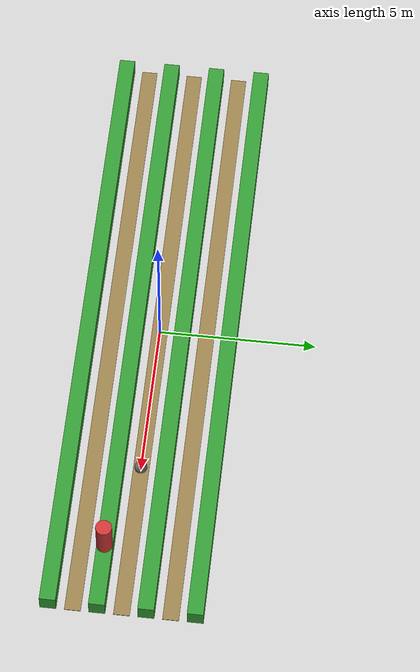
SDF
<?xml version="1.0"?>
<sdf version="1.9">
  <world name="crop_field">

    <!-- Physics -->
    <physics type="ode">
      <max_step_size>0.001</max_step_size>
      <real_time_factor>1</real_time_factor>
      <real_time_update_rate>1000</real_time_update_rate>
    </physics>

    <!-- Scene -->
    <scene>
      <ambient>0.5 0.5 0.5 1</ambient>
      <background>0.5 0.7 0.9 1</background>
      <shadows>true</shadows>
    </scene>

    <!-- Ground Plane -->
    <include>
      <uri>https://fuel.gazebosim.org/1.0/OpenRobotics/models/Ground Plane</uri>
    </include>

    <!-- Sun -->
    <include>
      <uri>https://fuel.gazebosim.org/1.0/OpenRobotics/models/Sun</uri>
    </include>

    <!-- Crop Rows - Row 1 -->
    <model name="crop_row_1">
      <pose>0 -2.25 0.3 0 0 0</pose>
      <static>true</static>
      <link name="link">
        <collision name="collision">
          <geometry>
            <box>
              <size>20 0.5 0.6</size>
            </box>
          </geometry>
        </collision>
        <visual name="visual">
          <geometry>
            <box>
              <size>20 0.5 0.6</size>
            </box>
          </geometry>
          <material>
            <ambient>0.2 0.6 0.2 1</ambient>
            <diffuse>0.2 0.6 0.2 1</diffuse>
            <specular>0.1 0.1 0.1 1</specular>
          </material>
        </visual>
      </link>
    </model>

    <!-- Crop Rows - Row 2 -->
    <model name="crop_row_2">
      <pose>0 -0.75 0.3 0 0 0</pose>
      <static>true</static>
      <link name="link">
        <collision name="collision">
          <geometry>
            <box>
              <size>20 0.5 0.6</size>
            </box>
          </geometry>
        </collision>
        <visual name="visual">
          <geometry>
            <box>
              <size>20 0.5 0.6</size>
            </box>
          </geometry>
          <material>
            <ambient>0.2 0.6 0.2 1</ambient>
            <diffuse>0.2 0.6 0.2 1</diffuse>
            <specular>0.1 0.1 0.1 1</specular>
          </material>
        </visual>
      </link>
    </model>

    <!-- Crop Rows - Row 3 -->
    <model name="crop_row_3">
      <pose>0 0.75 0.3 0 0 0</pose>
      <static>true</static>
      <link name="link">
        <collision name="collision">
          <geometry>
            <box>
              <size>20 0.5 0.6</size>
            </box>
          </geometry>
        </collision>
        <visual name="visual">
          <geometry>
            <box>
              <size>20 0.5 0.6</size>
            </box>
          </geometry>
          <material>
            <ambient>0.2 0.6 0.2 1</ambient>
            <diffuse>0.2 0.6 0.2 1</diffuse>
            <specular>0.1 0.1 0.1 1</specular>
          </material>
        </visual>
      </link>
    </model>

    <!-- Crop Rows - Row 4 -->
    <model name="crop_row_4">
      <pose>0 2.25 0.3 0 0 0</pose>
      <static>true</static>
      <link name="link">
        <collision name="collision">
          <geometry>
            <box>
              <size>20 0.5 0.6</size>
            </box>
          </geometry>
        </collision>
        <visual name="visual">
          <geometry>
            <box>
              <size>20 0.5 0.6</size>
            </box>
          </geometry>
          <material>
            <ambient>0.2 0.6 0.2 1</ambient>
            <diffuse>0.2 0.6 0.2 1</diffuse>
            <specular>0.1 0.1 0.1 1</specular>
          </material>
        </visual>
      </link>
    </model>

    <!-- Path between rows -->
    <model name="dirt_path_1">
      <pose>0 -1.5 0.01 0 0 0</pose>
      <static>true</static>
      <link name="link">
        <visual name="visual">
          <geometry>
            <box>
              <size>20 0.5 0.02</size>
            </box>
          </geometry>
          <material>
            <ambient>0.6 0.5 0.3 1</ambient>
            <diffuse>0.6 0.5 0.3 1</diffuse>
            <specular>0.1 0.1 0.1 1</specular>
          </material>
        </visual>
      </link>
    </model>

    <model name="dirt_path_2">
      <pose>0 0 0.01 0 0 0</pose>
      <static>true</static>
      <link name="link">
        <visual name="visual">
          <geometry>
            <box>
              <size>20 0.5 0.02</size>
            </box>
          </geometry>
          <material>
            <ambient>0.6 0.5 0.3 1</ambient>
            <diffuse>0.6 0.5 0.3 1</diffuse>
            <specular>0.1 0.1 0.1 1</specular>
          </material>
        </visual>
      </link>
    </model>

    <model name="dirt_path_3">
      <pose>0 1.5 0.01 0 0 0</pose>
      <static>true</static>
      <link name="link">
        <visual name="visual">
          <geometry>
            <box>
              <size>20 0.5 0.02</size>
            </box>
          </geometry>
          <material>
            <ambient>0.6 0.5 0.3 1</ambient>
            <diffuse>0.6 0.5 0.3 1</diffuse>
            <specular>0.1 0.1 0.1 1</specular>
          </material>
        </visual>
      </link>
    </model>

    <!-- Obstacle - Rock -->
    <model name="obstacle_rock">
      <pose>5 0 0.2 0 0 0</pose>
      <static>true</static>
      <link name="link">
        <collision name="collision">
          <geometry>
            <sphere>
              <radius>0.2</radius>
            </sphere>
          </geometry>
        </collision>
        <visual name="visual">
          <geometry>
            <sphere>
              <radius>0.2</radius>
            </sphere>
          </geometry>
          <material>
            <ambient>0.4 0.4 0.4 1</ambient>
            <diffuse>0.4 0.4 0.4 1</diffuse>
          </material>
        </visual>
      </link>
    </model>

    <!-- Obstacle - Person (simplified) -->
    <model name="obstacle_person">
      <pose>8 -0.75 0.9 0 0 0</pose>
      <static>true</static>
      <link name="link">
        <collision name="collision">
          <geometry>
            <cylinder>
              <radius>0.25</radius>
              <length>1.8</length>
            </cylinder>
          </geometry>
        </collision>
        <visual name="visual">
          <geometry>
            <cylinder>
              <radius>0.25</radius>
              <length>1.8</length>
            </cylinder>
          </geometry>
          <material>
            <ambient>0.8 0.2 0.2 1</ambient>
            <diffuse>0.8 0.2 0.2 1</diffuse>
          </material>
        </visual>
      </link>
    </model>

    <!-- Spherical coordinates for camera -->
    <spherical_coordinates>
      <surface_model>EARTH_WGS84</surface_model>
      <latitude_deg>37.0</latitude_deg>
      <longitude_deg>127.0</longitude_deg>
      <elevation>0</elevation>
      <heading_deg>0</heading_deg>
    </spherical_coordinates>

  </world>
</sdf>
